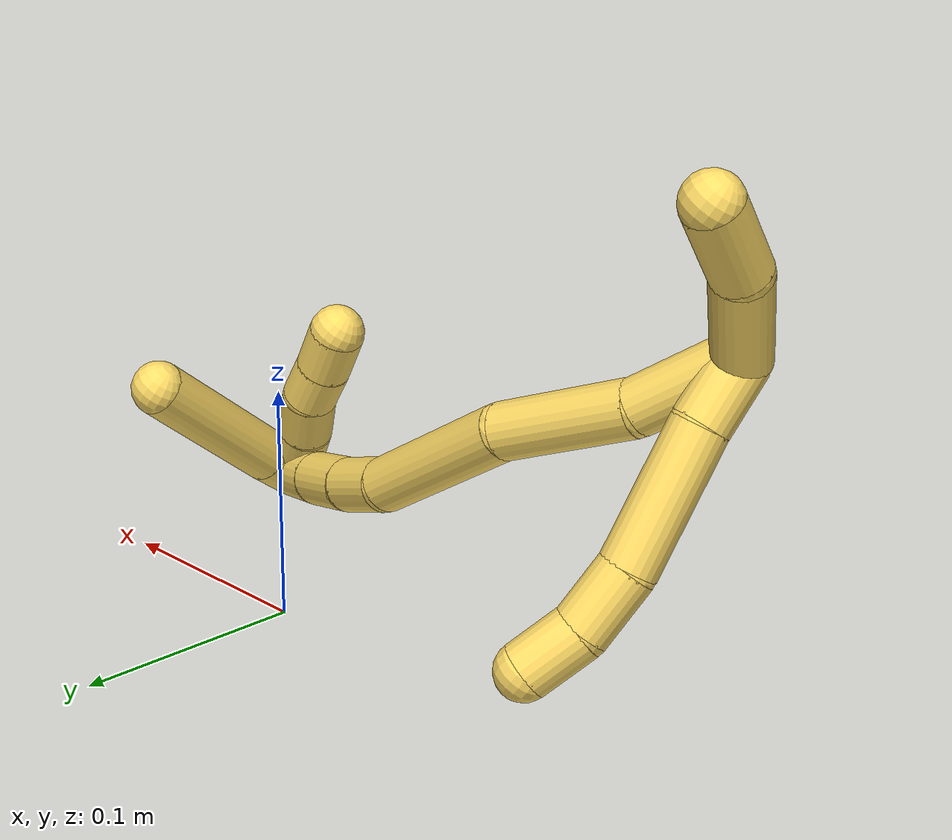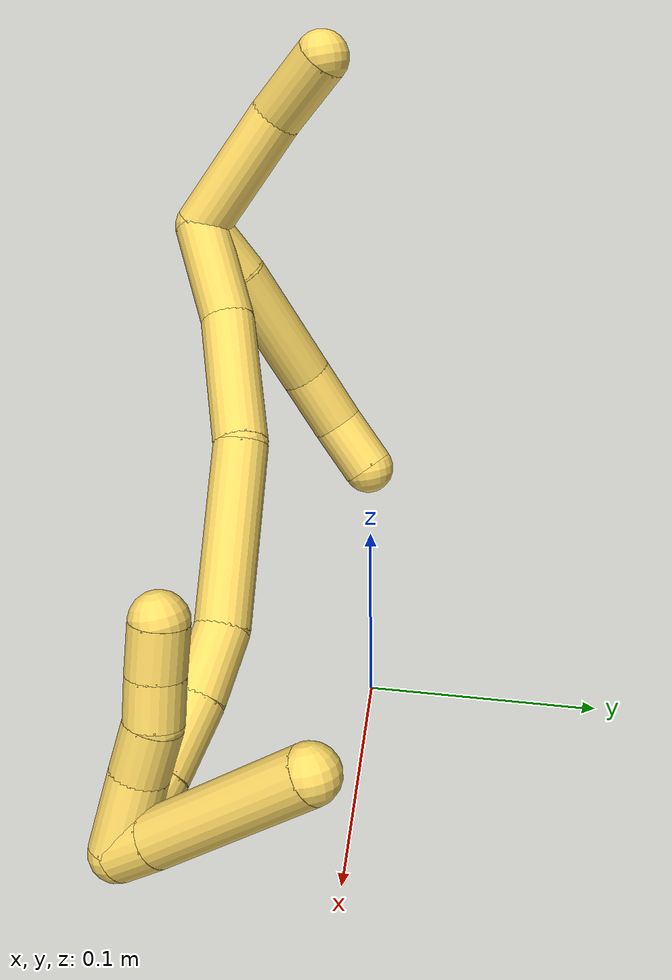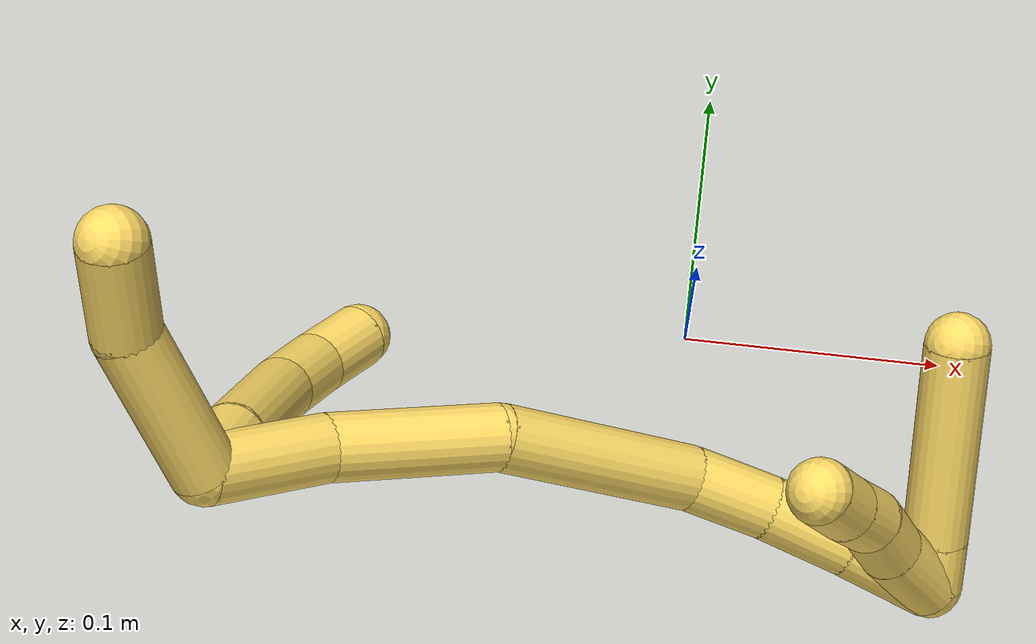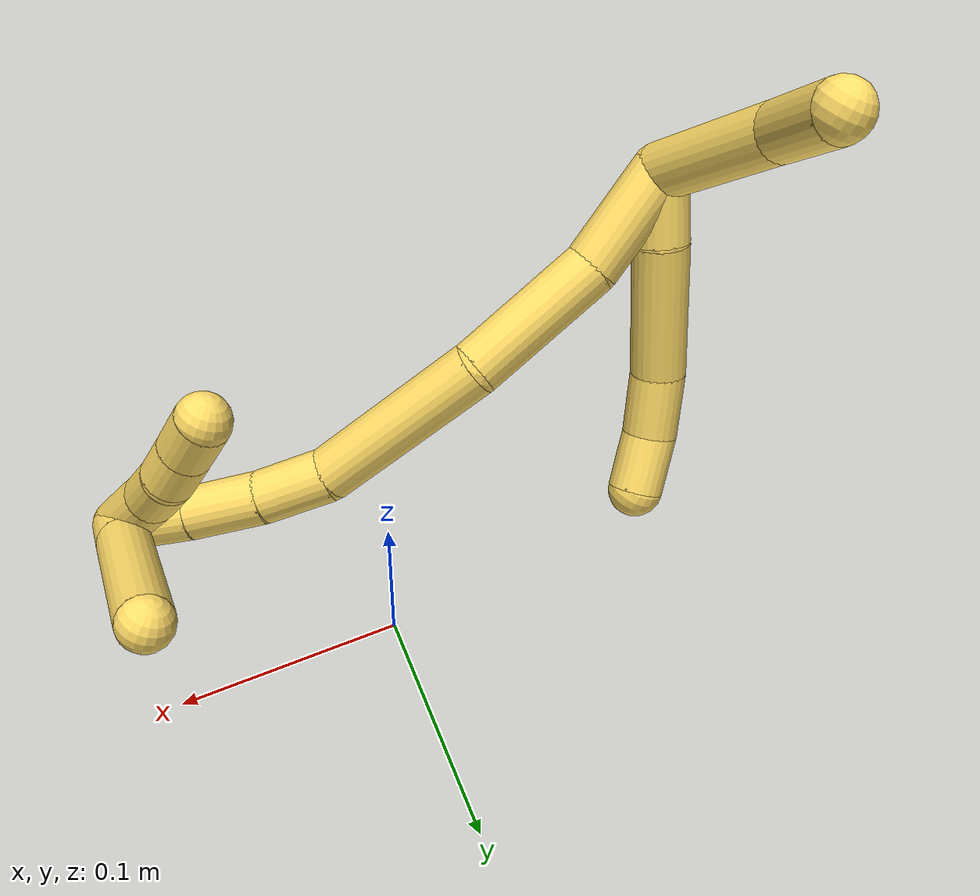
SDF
<sdf version="1.7">
 <world name="default">
  <model name="5">
   <static>0</static>
   <link name="5">
    <collision name="collision-cylinder-e_1_2_8">
     <pose>0.001943 0.007242 -0.013225 -2.64059 0.128137 -0.491332</pose>
     <geometry><cylinder><radius>0.0125</radius><length>0.030405</length></cylinder></geometry>
     <surface>
      <friction><ode><mu>1.16</mu><mu2>1.16</mu2><slip1>0</slip1><slip2>0</slip2></ode></friction>
      <contact><ode><kp>1e+06</kp><kd>1</kd><max_vel>0</max_vel><min_depth>0.001</min_depth></ode></contact>
     </surface>
    </collision>
    <visual name="visual-cylinder-e_1_2_8">
     <pose>0.001943 0.007242 -0.013225 -2.64059 0.128137 -0.491332</pose>
     <geometry><cylinder><radius>0.0125</radius><length>0.030405</length></cylinder></geometry>
     <material><ambient>1 0.858824 0.4 1</ambient></material>
    </visual>
    <collision name="collision-cylinder-e_2_8_9">
     <pose>0.004293 0.028583 -0.054204 -2.67158 0.0131 -0.0547</pose>
     <geometry><cylinder><radius>0.0125</radius><length>0.062264</length></cylinder></geometry>
     <surface>
      <friction><ode><mu>1.16</mu><mu2>1.16</mu2><slip1>0</slip1><slip2>0</slip2></ode></friction>
      <contact><ode><kp>1e+06</kp><kd>1</kd><max_vel>0</max_vel><min_depth>0.001</min_depth></ode></contact>
     </surface>
    </collision>
    <visual name="visual-cylinder-e_2_8_9">
     <pose>0.004293 0.028583 -0.054204 -2.67158 0.0131 -0.0547</pose>
     <geometry><cylinder><radius>0.0125</radius><length>0.062264</length></cylinder></geometry>
     <material><ambient>1 0.858824 0.4 1</ambient></material>
    </visual>
    <collision name="collision-cylinder-e_3_9_10">
     <pose>0.007217 0.047832 -0.095875 -2.78712 0.167933 -0.878536</pose>
     <geometry><cylinder><radius>0.0125</radius><length>0.030103</length></cylinder></geometry>
     <surface>
      <friction><ode><mu>1.16</mu><mu2>1.16</mu2><slip1>0</slip1><slip2>0</slip2></ode></friction>
      <contact><ode><kp>1e+06</kp><kd>1</kd><max_vel>0</max_vel><min_depth>0.001</min_depth></ode></contact>
     </surface>
    </collision>
    <visual name="visual-cylinder-e_3_9_10">
     <pose>0.007217 0.047832 -0.095875 -2.78712 0.167933 -0.878536</pose>
     <geometry><cylinder><radius>0.0125</radius><length>0.030103</length></cylinder></geometry>
     <material><ambient>1 0.858824 0.4 1</ambient></material>
    </visual>
    <collision name="collision-cylinder-e_4_10_6">
     <pose>0.015103 0.055525 -0.122041 -2.93695 0.40547 -2.21506</pose>
     <geometry><cylinder><radius>0.0125</radius><length>0.027227</length></cylinder></geometry>
     <surface>
      <friction><ode><mu>1.16</mu><mu2>1.16</mu2><slip1>0</slip1><slip2>0</slip2></ode></friction>
      <contact><ode><kp>1e+06</kp><kd>1</kd><max_vel>0</max_vel><min_depth>0.001</min_depth></ode></contact>
     </surface>
    </collision>
    <visual name="visual-cylinder-e_4_10_6">
     <pose>0.015103 0.055525 -0.122041 -2.93695 0.40547 -2.21506</pose>
     <geometry><cylinder><radius>0.0125</radius><length>0.027227</length></cylinder></geometry>
     <material><ambient>1 0.858824 0.4 1</ambient></material>
    </visual>
    <collision name="collision-cylinder-e_1_2_11">
     <pose>0.018746 0.01274 0.021489 -0.53516 0.643741 -0.182336</pose>
     <geometry><cylinder><radius>0.0125</radius><length>0.062465</length></cylinder></geometry>
     <surface>
      <friction><ode><mu>1.16</mu><mu2>1.16</mu2><slip1>0</slip1><slip2>0</slip2></ode></friction>
      <contact><ode><kp>1e+06</kp><kd>1</kd><max_vel>0</max_vel><min_depth>0.001</min_depth></ode></contact>
     </surface>
    </collision>
    <visual name="visual-cylinder-e_1_2_11">
     <pose>0.018746 0.01274 0.021489 -0.53516 0.643741 -0.182336</pose>
     <geometry><cylinder><radius>0.0125</radius><length>0.062465</length></cylinder></geometry>
     <material><ambient>1 0.858824 0.4 1</ambient></material>
    </visual>
    <collision name="collision-cylinder-e_2_11_5">
     <pose>0.052525 0.028943 0.053664 -0.313398 0.929075 -0.158016</pose>
     <geometry><cylinder><radius>0.0125</radius><length>0.037535</length></cylinder></geometry>
     <surface>
      <friction><ode><mu>1.16</mu><mu2>1.16</mu2><slip1>0</slip1><slip2>0</slip2></ode></friction>
      <contact><ode><kp>1e+06</kp><kd>1</kd><max_vel>0</max_vel><min_depth>0.001</min_depth></ode></contact>
     </surface>
    </collision>
    <visual name="visual-cylinder-e_2_11_5">
     <pose>0.052525 0.028943 0.053664 -0.313398 0.929075 -0.158016</pose>
     <geometry><cylinder><radius>0.0125</radius><length>0.037535</length></cylinder></geometry>
     <material><ambient>1 0.858824 0.4 1</ambient></material>
    </visual>
    <collision name="collision-cylinder-e_1_2_12">
     <pose>0.008583 -0.004967 -0.022156 2.92105 0.361406 2.0519</pose>
     <geometry><cylinder><radius>0.0125</radius><length>0.048549</length></cylinder></geometry>
     <surface>
      <friction><ode><mu>1.16</mu><mu2>1.16</mu2><slip1>0</slip1><slip2>0</slip2></ode></friction>
      <contact><ode><kp>1e+06</kp><kd>1</kd><max_vel>0</max_vel><min_depth>0.001</min_depth></ode></contact>
     </surface>
    </collision>
    <visual name="visual-cylinder-e_1_2_12">
     <pose>0.008583 -0.004967 -0.022156 2.92105 0.361406 2.0519</pose>
     <geometry><cylinder><radius>0.0125</radius><length>0.048549</length></cylinder></geometry>
     <material><ambient>1 0.858824 0.4 1</ambient></material>
    </visual>
    <collision name="collision-cylinder-e_2_12_13">
     <pose>0.030327 -0.024228 -0.070436 2.64092 0.416134 1.3804</pose>
     <geometry><cylinder><radius>0.0125</radius><length>0.065113</length></cylinder></geometry>
     <surface>
      <friction><ode><mu>1.16</mu><mu2>1.16</mu2><slip1>0</slip1><slip2>0</slip2></ode></friction>
      <contact><ode><kp>1e+06</kp><kd>1</kd><max_vel>0</max_vel><min_depth>0.001</min_depth></ode></contact>
     </surface>
    </collision>
    <visual name="visual-cylinder-e_2_12_13">
     <pose>0.030327 -0.024228 -0.070436 2.64092 0.416134 1.3804</pose>
     <geometry><cylinder><radius>0.0125</radius><length>0.065113</length></cylinder></geometry>
     <material><ambient>1 0.858824 0.4 1</ambient></material>
    </visual>
    <collision name="collision-cylinder-e_3_13_14">
     <pose>0.048703 -0.058079 -0.132849 2.64732 0.125851 0.489475</pose>
     <geometry><cylinder><radius>0.0125</radius><length>0.083106</length></cylinder></geometry>
     <surface>
      <friction><ode><mu>1.16</mu><mu2>1.16</mu2><slip1>0</slip1><slip2>0</slip2></ode></friction>
      <contact><ode><kp>1e+06</kp><kd>1</kd><max_vel>0</max_vel><min_depth>0.001</min_depth></ode></contact>
     </surface>
    </collision>
    <visual name="visual-cylinder-e_3_13_14">
     <pose>0.048703 -0.058079 -0.132849 2.64732 0.125851 0.489475</pose>
     <geometry><cylinder><radius>0.0125</radius><length>0.083106</length></cylinder></geometry>
     <material><ambient>1 0.858824 0.4 1</ambient></material>
    </visual>
    <collision name="collision-cylinder-e_4_14_15">
     <pose>0.055703 -0.089383 -0.180726 2.34929 0.10775 0.256446</pose>
     <geometry><cylinder><radius>0.0125</radius><length>0.033193</length></cylinder></geometry>
     <surface>
      <friction><ode><mu>1.16</mu><mu2>1.16</mu2><slip1>0</slip1><slip2>0</slip2></ode></friction>
      <contact><ode><kp>1e+06</kp><kd>1</kd><max_vel>0</max_vel><min_depth>0.001</min_depth></ode></contact>
     </surface>
    </collision>
    <visual name="visual-cylinder-e_4_14_15">
     <pose>0.055703 -0.089383 -0.180726 2.34929 0.10775 0.256446</pose>
     <geometry><cylinder><radius>0.0125</radius><length>0.033193</length></cylinder></geometry>
     <material><ambient>1 0.858824 0.4 1</ambient></material>
    </visual>
    <collision name="collision-cylinder-e_5_15_16">
     <pose>0.058822 -0.114834 -0.203254 2.24458 0.07595 0.157579</pose>
     <geometry><cylinder><radius>0.0125</radius><length>0.035174</length></cylinder></geometry>
     <surface>
      <friction><ode><mu>1.16</mu><mu2>1.16</mu2><slip1>0</slip1><slip2>0</slip2></ode></friction>
      <contact><ode><kp>1e+06</kp><kd>1</kd><max_vel>0</max_vel><min_depth>0.001</min_depth></ode></contact>
     </surface>
    </collision>
    <visual name="visual-cylinder-e_5_15_16">
     <pose>0.058822 -0.114834 -0.203254 2.24458 0.07595 0.157579</pose>
     <geometry><cylinder><radius>0.0125</radius><length>0.035174</length></cylinder></geometry>
     <material><ambient>1 0.858824 0.4 1</ambient></material>
    </visual>
    <collision name="collision-cylinder-e_6_16_1">
     <pose>0.061071 -0.14271 -0.224306 2.19045 0.052484 0.101847</pose>
     <geometry><cylinder><radius>0.0125</radius><length>0.034866</length></cylinder></geometry>
     <surface>
      <friction><ode><mu>1.16</mu><mu2>1.16</mu2><slip1>0</slip1><slip2>0</slip2></ode></friction>
      <contact><ode><kp>1e+06</kp><kd>1</kd><max_vel>0</max_vel><min_depth>0.001</min_depth></ode></contact>
     </surface>
    </collision>
    <visual name="visual-cylinder-e_6_16_1">
     <pose>0.061071 -0.14271 -0.224306 2.19045 0.052484 0.101847</pose>
     <geometry><cylinder><radius>0.0125</radius><length>0.034866</length></cylinder></geometry>
     <material><ambient>1 0.858824 0.4 1</ambient></material>
    </visual>
    <collision name="collision-cylinder-e_1_1_17">
     <pose>0.067336 -0.151691 -0.219144 -0.327688 0.320255 -0.053391</pose>
     <geometry><cylinder><radius>0.0125</radius><length>0.03399</length></cylinder></geometry>
     <surface>
      <friction><ode><mu>1.16</mu><mu2>1.16</mu2><slip1>0</slip1><slip2>0</slip2></ode></friction>
      <contact><ode><kp>1e+06</kp><kd>1</kd><max_vel>0</max_vel><min_depth>0.001</min_depth></ode></contact>
     </surface>
    </collision>
    <visual name="visual-cylinder-e_1_1_17">
     <pose>0.067336 -0.151691 -0.219144 -0.327688 0.320255 -0.053391</pose>
     <geometry><cylinder><radius>0.0125</radius><length>0.03399</length></cylinder></geometry>
     <material><ambient>1 0.858824 0.4 1</ambient></material>
    </visual>
    <collision name="collision-cylinder-e_2_17_18">
     <pose>0.077625 -0.143891 -0.193453 -0.245266 0.430995 -0.053945</pose>
     <geometry><cylinder><radius>0.0125</radius><length>0.023642</length></cylinder></geometry>
     <surface>
      <friction><ode><mu>1.16</mu><mu2>1.16</mu2><slip1>0</slip1><slip2>0</slip2></ode></friction>
      <contact><ode><kp>1e+06</kp><kd>1</kd><max_vel>0</max_vel><min_depth>0.001</min_depth></ode></contact>
     </surface>
    </collision>
    <visual name="visual-cylinder-e_2_17_18">
     <pose>0.077625 -0.143891 -0.193453 -0.245266 0.430995 -0.053945</pose>
     <geometry><cylinder><radius>0.0125</radius><length>0.023642</length></cylinder></geometry>
     <material><ambient>1 0.858824 0.4 1</ambient></material>
    </visual>
    <collision name="collision-cylinder-e_3_18_19">
     <pose>0.084482 -0.139681 -0.173242 -0.162178 0.191079 -0.015576</pose>
     <geometry><cylinder><radius>0.0125</radius><length>0.020212</length></cylinder></geometry>
     <surface>
      <friction><ode><mu>1.16</mu><mu2>1.16</mu2><slip1>0</slip1><slip2>0</slip2></ode></friction>
      <contact><ode><kp>1e+06</kp><kd>1</kd><max_vel>0</max_vel><min_depth>0.001</min_depth></ode></contact>
     </surface>
    </collision>
    <visual name="visual-cylinder-e_3_18_19">
     <pose>0.084482 -0.139681 -0.173242 -0.162178 0.191079 -0.015576</pose>
     <geometry><cylinder><radius>0.0125</radius><length>0.020212</length></cylinder></geometry>
     <material><ambient>1 0.858824 0.4 1</ambient></material>
    </visual>
    <collision name="collision-cylinder-e_4_19_4">
     <pose>0.089085 -0.136472 -0.152823 -0.150091 0.244674 -0.018488</pose>
     <geometry><cylinder><radius>0.0125</radius><length>0.022156</length></cylinder></geometry>
     <surface>
      <friction><ode><mu>1.16</mu><mu2>1.16</mu2><slip1>0</slip1><slip2>0</slip2></ode></friction>
      <contact><ode><kp>1e+06</kp><kd>1</kd><max_vel>0</max_vel><min_depth>0.001</min_depth></ode></contact>
     </surface>
    </collision>
    <visual name="visual-cylinder-e_4_19_4">
     <pose>0.089085 -0.136472 -0.152823 -0.150091 0.244674 -0.018488</pose>
     <geometry><cylinder><radius>0.0125</radius><length>0.022156</length></cylinder></geometry>
     <material><ambient>1 0.858824 0.4 1</ambient></material>
    </visual>
    <collision name="collision-cylinder-e_1_1_20">
     <pose>0.071014 -0.153525 -0.231326 -0.826698 1.10281 -0.526993</pose>
     <geometry><cylinder><radius>0.0125</radius><length>0.020232</length></cylinder></geometry>
     <surface>
      <friction><ode><mu>1.16</mu><mu2>1.16</mu2><slip1>0</slip1><slip2>0</slip2></ode></friction>
      <contact><ode><kp>1e+06</kp><kd>1</kd><max_vel>0</max_vel><min_depth>0.001</min_depth></ode></contact>
     </surface>
    </collision>
    <visual name="visual-cylinder-e_1_1_20">
     <pose>0.071014 -0.153525 -0.231326 -0.826698 1.10281 -0.526993</pose>
     <geometry><cylinder><radius>0.0125</radius><length>0.020232</length></cylinder></geometry>
     <material><ambient>1 0.858824 0.4 1</ambient></material>
    </visual>
    <collision name="collision-cylinder-e_2_20_3">
     <pose>0.115226 -0.137314 -0.214538 -0.753651 1.08041 -0.466031</pose>
     <geometry><cylinder><radius>0.0125</radius><length>0.079768</length></cylinder></geometry>
     <surface>
      <friction><ode><mu>1.16</mu><mu2>1.16</mu2><slip1>0</slip1><slip2>0</slip2></ode></friction>
      <contact><ode><kp>1e+06</kp><kd>1</kd><max_vel>0</max_vel><min_depth>0.001</min_depth></ode></contact>
     </surface>
    </collision>
    <visual name="visual-cylinder-e_2_20_3">
     <pose>0.115226 -0.137314 -0.214538 -0.753651 1.08041 -0.466031</pose>
     <geometry><cylinder><radius>0.0125</radius><length>0.079768</length></cylinder></geometry>
     <material><ambient>1 0.858824 0.4 1</ambient></material>
    </visual>
    <collision name="collision-sphere-3">
     <pose>0.15041 -0.12446 -0.200841 0 -0 0</pose>
     <geometry><sphere><radius>0.0125</radius></sphere></geometry>
     <surface>
      <friction><ode><mu>1.16</mu><mu2>1.16</mu2><slip1>0</slip1><slip2>0</slip2></ode></friction>
      <contact><ode><kp>1e+06</kp><kd>1</kd><max_vel>0</max_vel><min_depth>0.001</min_depth></ode></contact>
     </surface>
    </collision>
    <visual name="visual-sphere-3">
     <pose>0.15041 -0.12446 -0.200841 0 -0 0</pose>
     <geometry><sphere><radius>0.0125</radius></sphere></geometry>
     <material><ambient>1 0.858824 0.4 1</ambient></material>
    </visual>
    <collision name="collision-sphere-20">
     <pose>0.080043 -0.150168 -0.228235 0 -0 0</pose>
     <geometry><sphere><radius>0.0125</radius></sphere></geometry>
     <surface>
      <friction><ode><mu>1.16</mu><mu2>1.16</mu2><slip1>0</slip1><slip2>0</slip2></ode></friction>
      <contact><ode><kp>1e+06</kp><kd>1</kd><max_vel>0</max_vel><min_depth>0.001</min_depth></ode></contact>
     </surface>
    </collision>
    <visual name="visual-sphere-20">
     <pose>0.080043 -0.150168 -0.228235 0 -0 0</pose>
     <geometry><sphere><radius>0.0125</radius></sphere></geometry>
     <material><ambient>1 0.858824 0.4 1</ambient></material>
    </visual>
    <collision name="collision-sphere-4">
     <pose>0.091769 -0.134865 -0.142196 0 -0 0</pose>
     <geometry><sphere><radius>0.0125</radius></sphere></geometry>
     <surface>
      <friction><ode><mu>1.16</mu><mu2>1.16</mu2><slip1>0</slip1><slip2>0</slip2></ode></friction>
      <contact><ode><kp>1e+06</kp><kd>1</kd><max_vel>0</max_vel><min_depth>0.001</min_depth></ode></contact>
     </surface>
    </collision>
    <visual name="visual-sphere-4">
     <pose>0.091769 -0.134865 -0.142196 0 -0 0</pose>
     <geometry><sphere><radius>0.0125</radius></sphere></geometry>
     <material><ambient>1 0.858824 0.4 1</ambient></material>
    </visual>
    <collision name="collision-sphere-11">
     <pose>0.037491 0.02548 0.042978 0 -0 0</pose>
     <geometry><sphere><radius>0.0125</radius></sphere></geometry>
     <surface>
      <friction><ode><mu>1.16</mu><mu2>1.16</mu2><slip1>0</slip1><slip2>0</slip2></ode></friction>
      <contact><ode><kp>1e+06</kp><kd>1</kd><max_vel>0</max_vel><min_depth>0.001</min_depth></ode></contact>
     </surface>
    </collision>
    <visual name="visual-sphere-11">
     <pose>0.037491 0.02548 0.042978 0 -0 0</pose>
     <geometry><sphere><radius>0.0125</radius></sphere></geometry>
     <material><ambient>1 0.858824 0.4 1</ambient></material>
    </visual>
    <collision name="collision-sphere-6">
     <pose>0.020472 0.058067 -0.13429 0 -0 0</pose>
     <geometry><sphere><radius>0.0125</radius></sphere></geometry>
     <surface>
      <friction><ode><mu>1.16</mu><mu2>1.16</mu2><slip1>0</slip1><slip2>0</slip2></ode></friction>
      <contact><ode><kp>1e+06</kp><kd>1</kd><max_vel>0</max_vel><min_depth>0.001</min_depth></ode></contact>
     </surface>
    </collision>
    <visual name="visual-sphere-6">
     <pose>0.020472 0.058067 -0.13429 0 -0 0</pose>
     <geometry><sphere><radius>0.0125</radius></sphere></geometry>
     <material><ambient>1 0.858824 0.4 1</ambient></material>
    </visual>
    <collision name="collision-sphere-10">
     <pose>0.009733 0.052983 -0.109792 0 -0 0</pose>
     <geometry><sphere><radius>0.0125</radius></sphere></geometry>
     <surface>
      <friction><ode><mu>1.16</mu><mu2>1.16</mu2><slip1>0</slip1><slip2>0</slip2></ode></friction>
      <contact><ode><kp>1e+06</kp><kd>1</kd><max_vel>0</max_vel><min_depth>0.001</min_depth></ode></contact>
     </surface>
    </collision>
    <visual name="visual-sphere-10">
     <pose>0.009733 0.052983 -0.109792 0 -0 0</pose>
     <geometry><sphere><radius>0.0125</radius></sphere></geometry>
     <material><ambient>1 0.858824 0.4 1</ambient></material>
    </visual>
    <collision name="collision-sphere-9">
     <pose>0.004701 0.042681 -0.081957 0 -0 0</pose>
     <geometry><sphere><radius>0.0125</radius></sphere></geometry>
     <surface>
      <friction><ode><mu>1.16</mu><mu2>1.16</mu2><slip1>0</slip1><slip2>0</slip2></ode></friction>
      <contact><ode><kp>1e+06</kp><kd>1</kd><max_vel>0</max_vel><min_depth>0.001</min_depth></ode></contact>
     </surface>
    </collision>
    <visual name="visual-sphere-9">
     <pose>0.004701 0.042681 -0.081957 0 -0 0</pose>
     <geometry><sphere><radius>0.0125</radius></sphere></geometry>
     <material><ambient>1 0.858824 0.4 1</ambient></material>
    </visual>
    <collision name="collision-sphere-2">
     <geometry><sphere><radius>0.0125</radius></sphere></geometry>
     <surface>
      <friction><ode><mu>1.16</mu><mu2>1.16</mu2><slip1>0</slip1><slip2>0</slip2></ode></friction>
      <contact><ode><kp>1e+06</kp><kd>1</kd><max_vel>0</max_vel><min_depth>0.001</min_depth></ode></contact>
     </surface>
    </collision>
    <visual name="visual-sphere-2">
     <geometry><sphere><radius>0.0125</radius></sphere></geometry>
     <material><ambient>1 0.858824 0.4 1</ambient></material>
    </visual>
    <collision name="collision-sphere-19">
     <pose>0.086402 -0.138079 -0.16345 0 -0 0</pose>
     <geometry><sphere><radius>0.0125</radius></sphere></geometry>
     <surface>
      <friction><ode><mu>1.16</mu><mu2>1.16</mu2><slip1>0</slip1><slip2>0</slip2></ode></friction>
      <contact><ode><kp>1e+06</kp><kd>1</kd><max_vel>0</max_vel><min_depth>0.001</min_depth></ode></contact>
     </surface>
    </collision>
    <visual name="visual-sphere-19">
     <pose>0.086402 -0.138079 -0.16345 0 -0 0</pose>
     <geometry><sphere><radius>0.0125</radius></sphere></geometry>
     <material><ambient>1 0.858824 0.4 1</ambient></material>
    </visual>
    <collision name="collision-sphere-8">
     <pose>0.003885 0.014484 -0.02645 0 -0 0</pose>
     <geometry><sphere><radius>0.0125</radius></sphere></geometry>
     <surface>
      <friction><ode><mu>1.16</mu><mu2>1.16</mu2><slip1>0</slip1><slip2>0</slip2></ode></friction>
      <contact><ode><kp>1e+06</kp><kd>1</kd><max_vel>0</max_vel><min_depth>0.001</min_depth></ode></contact>
     </surface>
    </collision>
    <visual name="visual-sphere-8">
     <pose>0.003885 0.014484 -0.02645 0 -0 0</pose>
     <geometry><sphere><radius>0.0125</radius></sphere></geometry>
     <material><ambient>1 0.858824 0.4 1</ambient></material>
    </visual>
    <collision name="collision-sphere-5">
     <pose>0.067559 0.032407 0.064351 0 -0 0</pose>
     <geometry><sphere><radius>0.0125</radius></sphere></geometry>
     <surface>
      <friction><ode><mu>1.16</mu><mu2>1.16</mu2><slip1>0</slip1><slip2>0</slip2></ode></friction>
      <contact><ode><kp>1e+06</kp><kd>1</kd><max_vel>0</max_vel><min_depth>0.001</min_depth></ode></contact>
     </surface>
    </collision>
    <visual name="visual-sphere-5">
     <pose>0.067559 0.032407 0.064351 0 -0 0</pose>
     <geometry><sphere><radius>0.0125</radius></sphere></geometry>
     <material><ambient>1 0.858824 0.4 1</ambient></material>
    </visual>
    <collision name="collision-sphere-12">
     <pose>0.017166 -0.009934 -0.044312 0 -0 0</pose>
     <geometry><sphere><radius>0.0125</radius></sphere></geometry>
     <surface>
      <friction><ode><mu>1.16</mu><mu2>1.16</mu2><slip1>0</slip1><slip2>0</slip2></ode></friction>
      <contact><ode><kp>1e+06</kp><kd>1</kd><max_vel>0</max_vel><min_depth>0.001</min_depth></ode></contact>
     </surface>
    </collision>
    <visual name="visual-sphere-12">
     <pose>0.017166 -0.009934 -0.044312 0 -0 0</pose>
     <geometry><sphere><radius>0.0125</radius></sphere></geometry>
     <material><ambient>1 0.858824 0.4 1</ambient></material>
    </visual>
    <collision name="collision-sphere-13">
     <pose>0.043487 -0.038522 -0.096559 0 -0 0</pose>
     <geometry><sphere><radius>0.0125</radius></sphere></geometry>
     <surface>
      <friction><ode><mu>1.16</mu><mu2>1.16</mu2><slip1>0</slip1><slip2>0</slip2></ode></friction>
      <contact><ode><kp>1e+06</kp><kd>1</kd><max_vel>0</max_vel><min_depth>0.001</min_depth></ode></contact>
     </surface>
    </collision>
    <visual name="visual-sphere-13">
     <pose>0.043487 -0.038522 -0.096559 0 -0 0</pose>
     <geometry><sphere><radius>0.0125</radius></sphere></geometry>
     <material><ambient>1 0.858824 0.4 1</ambient></material>
    </visual>
    <collision name="collision-sphere-14">
     <pose>0.053918 -0.077635 -0.16914 0 -0 0</pose>
     <geometry><sphere><radius>0.0125</radius></sphere></geometry>
     <surface>
      <friction><ode><mu>1.16</mu><mu2>1.16</mu2><slip1>0</slip1><slip2>0</slip2></ode></friction>
      <contact><ode><kp>1e+06</kp><kd>1</kd><max_vel>0</max_vel><min_depth>0.001</min_depth></ode></contact>
     </surface>
    </collision>
    <visual name="visual-sphere-14">
     <pose>0.053918 -0.077635 -0.16914 0 -0 0</pose>
     <geometry><sphere><radius>0.0125</radius></sphere></geometry>
     <material><ambient>1 0.858824 0.4 1</ambient></material>
    </visual>
    <collision name="collision-sphere-15">
     <pose>0.057488 -0.10113 -0.192313 0 -0 0</pose>
     <geometry><sphere><radius>0.0125</radius></sphere></geometry>
     <surface>
      <friction><ode><mu>1.16</mu><mu2>1.16</mu2><slip1>0</slip1><slip2>0</slip2></ode></friction>
      <contact><ode><kp>1e+06</kp><kd>1</kd><max_vel>0</max_vel><min_depth>0.001</min_depth></ode></contact>
     </surface>
    </collision>
    <visual name="visual-sphere-15">
     <pose>0.057488 -0.10113 -0.192313 0 -0 0</pose>
     <geometry><sphere><radius>0.0125</radius></sphere></geometry>
     <material><ambient>1 0.858824 0.4 1</ambient></material>
    </visual>
    <collision name="collision-sphere-16">
     <pose>0.060157 -0.128538 -0.214196 0 -0 0</pose>
     <geometry><sphere><radius>0.0125</radius></sphere></geometry>
     <surface>
      <friction><ode><mu>1.16</mu><mu2>1.16</mu2><slip1>0</slip1><slip2>0</slip2></ode></friction>
      <contact><ode><kp>1e+06</kp><kd>1</kd><max_vel>0</max_vel><min_depth>0.001</min_depth></ode></contact>
     </surface>
    </collision>
    <visual name="visual-sphere-16">
     <pose>0.060157 -0.128538 -0.214196 0 -0 0</pose>
     <geometry><sphere><radius>0.0125</radius></sphere></geometry>
     <material><ambient>1 0.858824 0.4 1</ambient></material>
    </visual>
    <collision name="collision-sphere-1">
     <pose>0.061986 -0.156883 -0.234416 0 -0 0</pose>
     <geometry><sphere><radius>0.0125</radius></sphere></geometry>
     <surface>
      <friction><ode><mu>1.16</mu><mu2>1.16</mu2><slip1>0</slip1><slip2>0</slip2></ode></friction>
      <contact><ode><kp>1e+06</kp><kd>1</kd><max_vel>0</max_vel><min_depth>0.001</min_depth></ode></contact>
     </surface>
    </collision>
    <visual name="visual-sphere-1">
     <pose>0.061986 -0.156883 -0.234416 0 -0 0</pose>
     <geometry><sphere><radius>0.0125</radius></sphere></geometry>
     <material><ambient>1 0.858824 0.4 1</ambient></material>
    </visual>
    <collision name="collision-sphere-18">
     <pose>0.082563 -0.141283 -0.183034 0 -0 0</pose>
     <geometry><sphere><radius>0.0125</radius></sphere></geometry>
     <surface>
      <friction><ode><mu>1.16</mu><mu2>1.16</mu2><slip1>0</slip1><slip2>0</slip2></ode></friction>
      <contact><ode><kp>1e+06</kp><kd>1</kd><max_vel>0</max_vel><min_depth>0.001</min_depth></ode></contact>
     </surface>
    </collision>
    <visual name="visual-sphere-18">
     <pose>0.082563 -0.141283 -0.183034 0 -0 0</pose>
     <geometry><sphere><radius>0.0125</radius></sphere></geometry>
     <material><ambient>1 0.858824 0.4 1</ambient></material>
    </visual>
    <collision name="collision-sphere-17">
     <pose>0.072686 -0.146499 -0.203871 0 -0 0</pose>
     <geometry><sphere><radius>0.0125</radius></sphere></geometry>
     <surface>
      <friction><ode><mu>1.16</mu><mu2>1.16</mu2><slip1>0</slip1><slip2>0</slip2></ode></friction>
      <contact><ode><kp>1e+06</kp><kd>1</kd><max_vel>0</max_vel><min_depth>0.001</min_depth></ode></contact>
     </surface>
    </collision>
    <visual name="visual-sphere-17">
     <pose>0.072686 -0.146499 -0.203871 0 -0 0</pose>
     <geometry><sphere><radius>0.0125</radius></sphere></geometry>
     <material><ambient>1 0.858824 0.4 1</ambient></material>
    </visual>
    <inertial>
     <pose>0.046689 -0.053677 -0.113338 0 -0 0</pose>
     <mass>0.75</mass>
     <inertia>
      <ixx>0.000193</ixx>
      <ixy>0</ixy>
      <ixz>0</ixz>
      <iyy>5.2e-05</iyy>
      <iyz>0</iyz>
      <izz>-9.4e-05</izz>
     </inertia>
    </inertial>
   </link>
   <pose>-0.160355 -0.0995 0.131606 -0.326489 -0.50522 1.05799</pose>
  </model>
 </world>
</sdf>
